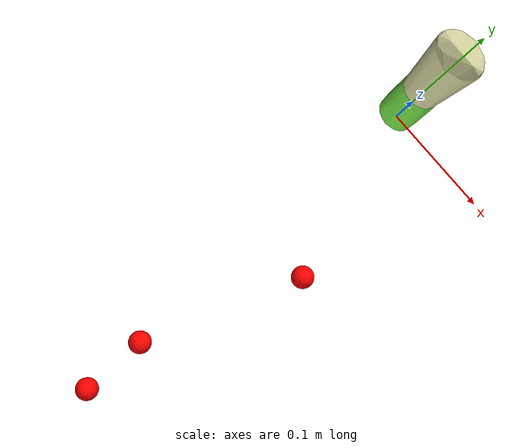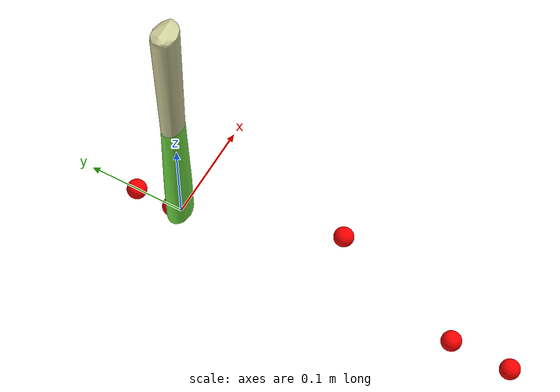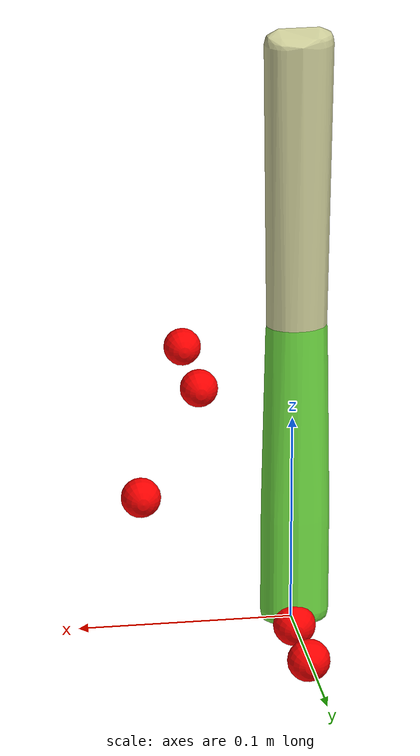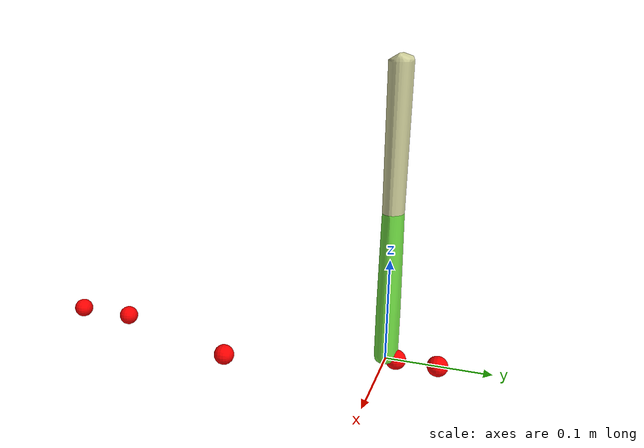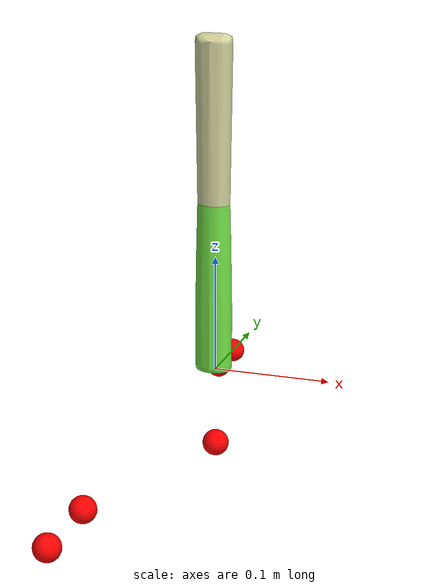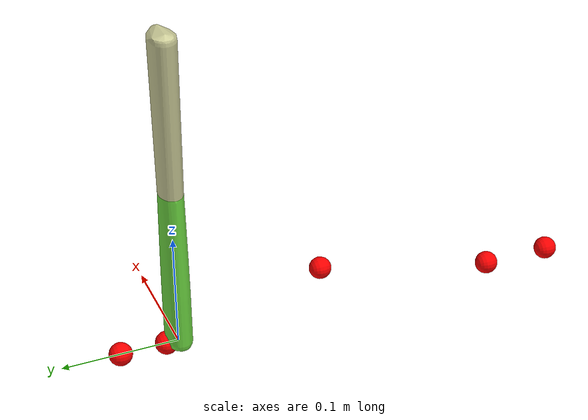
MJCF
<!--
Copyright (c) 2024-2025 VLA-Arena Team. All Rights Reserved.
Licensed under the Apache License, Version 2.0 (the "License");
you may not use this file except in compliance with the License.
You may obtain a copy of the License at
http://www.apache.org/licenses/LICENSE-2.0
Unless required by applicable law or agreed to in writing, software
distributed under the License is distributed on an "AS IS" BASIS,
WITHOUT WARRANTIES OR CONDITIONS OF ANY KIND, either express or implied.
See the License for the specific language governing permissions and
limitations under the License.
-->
<mujoco model="hammer_handle">
  <compiler angle="radian"/>
  <asset>
    <texture type="2d" name="Image_0" file="visual/Image_0.png"/>
    <material name="Hammers" texture="Image_0" specular="0.5" shininess="0.225"/>
    <mesh file="visual/hammer_handle.obj" name="hammer_handle"/>
    <mesh file="collision/hammer_handle_collision_0.obj" name="hammer_handle_collision_0"/>
    <mesh file="collision/hammer_handle_collision_1.obj" name="hammer_handle_collision_1"/>
  </asset>

  <worldbody>
    <body name="hammer_handle" euler="1.57 0 0">
     <body name="object">
      <!-- Visual geom -->
      <inertial pos="0 0 0" mass="1" diaginertia="0.01 0.01 0.01"/>
      <geom
        mesh="hammer_handle"
        material="Hammers"
        group="0"
        type="mesh"
        contype="0"
        conaffinity="0"
        mass="1"/>

      <!-- Collision geoms -->
      <geom
        mesh="hammer_handle_collision_0"
        group="1"
        type="mesh"
        solref="0.001 1"
        solimp="0.998 0.998 0.001"
        mass="1"
        rgba="0.8094387195292774 0.8096042948958615 0.6046390771473458 1"/>
      <geom
        mesh="hammer_handle_collision_1"
        group="1"
        type="mesh"
        solref="0.001 1"
        solimp="0.998 0.998 0.001"
        mass="1"
        rgba="0.4399641716502254 0.8691001982112624 0.2620651880650815 1"/>
      </body>
          <!-- Keypoint sites -->
    <site
      name="handle_top_1"
      type="sphere"
      size="0.01"
      group="2"
      rgba="1 0 0 1"
      pos="0 0 -0.01"/>
    <site
      name="handle_top_2"
      type="sphere"
      size="0.01"
      group="2"
      rgba="1 0 0 1"
      pos="0 0 0.29"/>

    <!-- New sites -->
    <site
      name="bottom_site"
      type="sphere"
      size="0.01"
      group="2"
      rgba="1 0 0 1"
      pos="0 0 -0.05"/>
    <site
      name="top_site"
      type="sphere"
      size="0.01"
      group="2"
      rgba="1 0 0 1"
      pos="0 0 0.35"/>
    <site
      name="horizontal_radius_site"
      type="sphere"
      size="0.01"
      group="2"
      rgba="1 0 0 1"
      pos="0.05 0 0.15"/>
    </body>

  </worldbody>
</mujoco>
